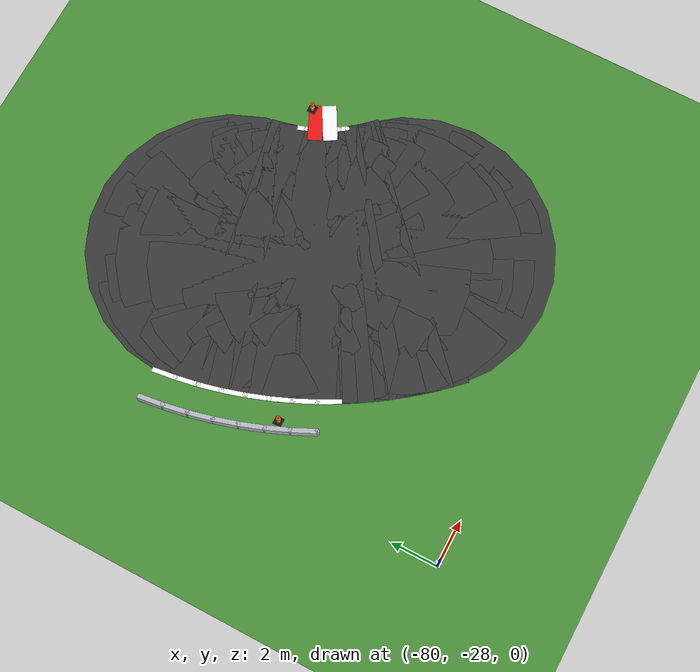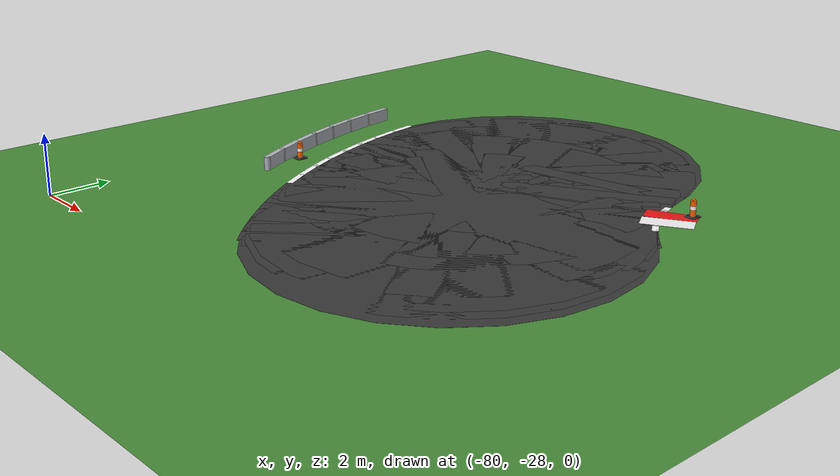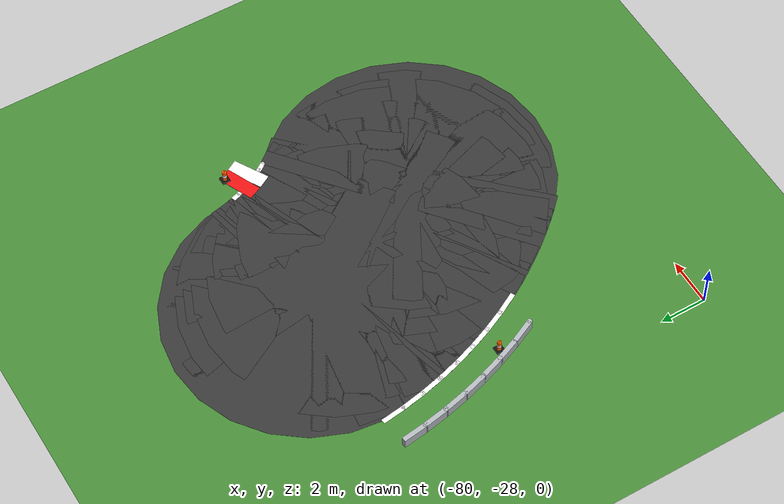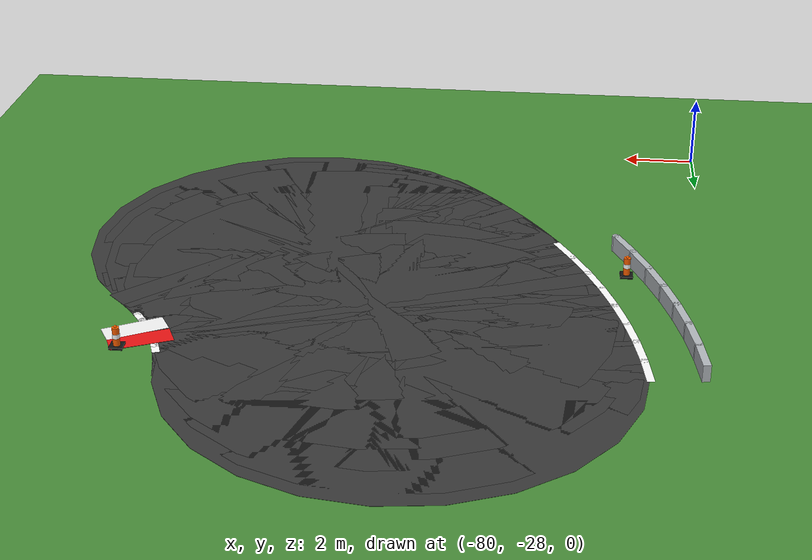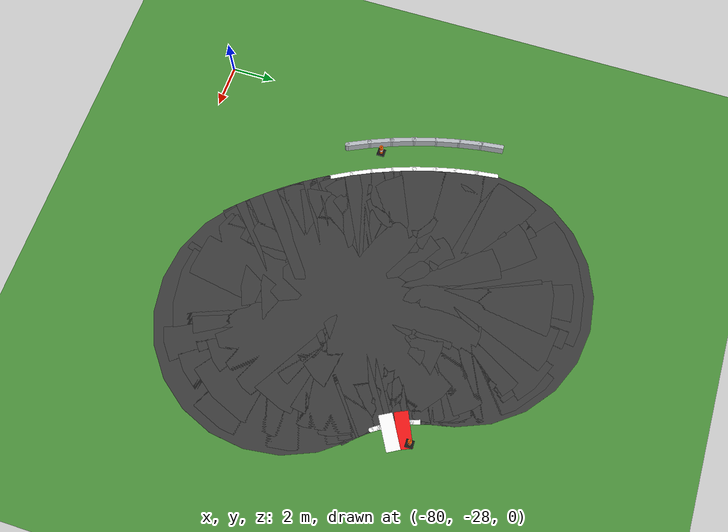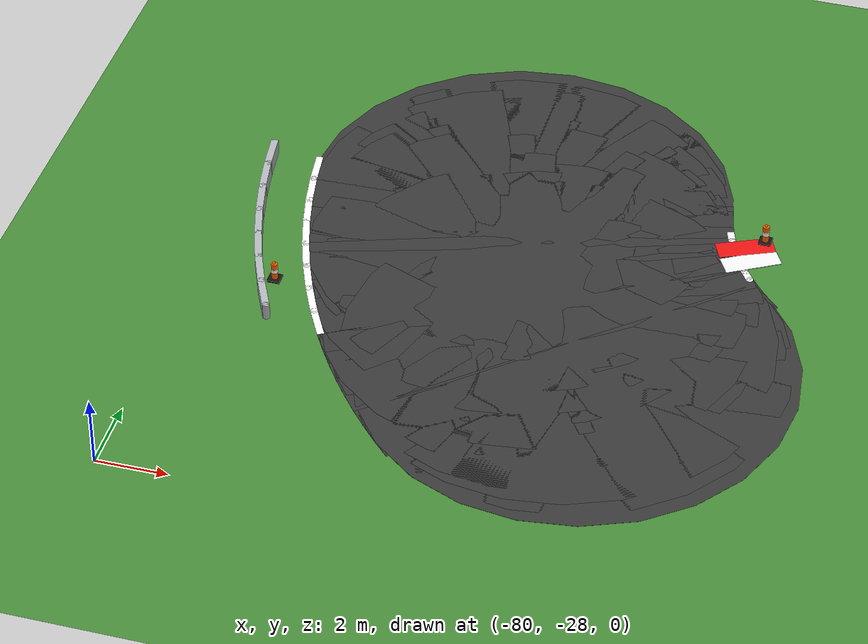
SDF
<sdf version="1.6">
 <world name="sem_silesia_ring_2026">
  <model name="ground_plane">
   <static>true</static>
   <link name="link">
    <collision name="collision">
     <geometry><plane><normal>0 0 1</normal><size>600 600</size></plane></geometry>
     <surface><friction><ode><mu>0.6</mu><mu2>0.6</mu2></ode></friction></surface>
    </collision>
    <visual name="visual">
     <geometry><plane><normal>0 0 1</normal><size>600 600</size></plane></geometry>
     <material><ambient>0.28 0.55 0.22 1</ambient><diffuse>0.28 0.55 0.22 1</diffuse></material>
    </visual>
   </link>
  </model>
  <model name="road_L_jnt50">
   <static>true</static>
   <pose>-72.3101 -14.6706 0.0030 0 0 0</pose>
   <link name="link">
    <visual name="v">
     <geometry><cylinder><radius>6.0000</radius><length>0.0060</length></cylinder></geometry>
     <material><ambient>0.22 0.22 0.22 1</ambient><diffuse>0.22 0.22 0.22 1</diffuse></material>
    </visual>
    <collision name="c">
     <geometry><cylinder><radius>6.0000</radius><length>0.0060</length></cylinder></geometry>
     <surface><friction><ode><mu>0.9</mu><mu2>0.9</mu2></ode></friction></surface>
    </collision>
   </link>
  </model>
  <model name="road_L_s50">
   <static>true</static>
   <pose>-72.2703 -14.8851 0.0030 0 0 4.9044</pose>
   <link name="link">
    <visual name="v">
     <geometry><box><size>0.6957 12.0000 0.0060</size></box></geometry>
     <material><ambient>0.22 0.22 0.22 1</ambient><diffuse>0.22 0.22 0.22 1</diffuse></material>
    </visual>
    <collision name="c">
     <geometry><box><size>0.6957 12.0000 0.0060</size></box></geometry>
     <surface><friction><ode><mu>0.9</mu><mu2>0.9</mu2></ode></friction></surface>
    </collision>
   </link>
  </model>
  <model name="road_L_jnt51">
   <static>true</static>
   <pose>-72.2268 -15.0989 0.0030 0 0 0</pose>
   <link name="link">
    <visual name="v">
     <geometry><cylinder><radius>6.0000</radius><length>0.0060</length></cylinder></geometry>
     <material><ambient>0.22 0.22 0.22 1</ambient><diffuse>0.22 0.22 0.22 1</diffuse></material>
    </visual>
    <collision name="c">
     <geometry><cylinder><radius>6.0000</radius><length>0.0060</length></cylinder></geometry>
     <surface><friction><ode><mu>0.9</mu><mu2>0.9</mu2></ode></friction></surface>
    </collision>
   </link>
  </model>
  <model name="road_L_s51">
   <static>true</static>
   <pose>-72.1796 -15.3119 0.0030 0 0 4.9393</pose>
   <link name="link">
    <visual name="v">
     <geometry><box><size>0.6957 12.0000 0.0060</size></box></geometry>
     <material><ambient>0.22 0.22 0.22 1</ambient><diffuse>0.22 0.22 0.22 1</diffuse></material>
    </visual>
    <collision name="c">
     <geometry><box><size>0.6957 12.0000 0.0060</size></box></geometry>
     <surface><friction><ode><mu>0.9</mu><mu2>0.9</mu2></ode></friction></surface>
    </collision>
   </link>
  </model>
  <model name="road_L_jnt52">
   <static>true</static>
   <pose>-72.1287 -15.5240 0.0030 0 0 0</pose>
   <link name="link">
    <visual name="v">
     <geometry><cylinder><radius>6.0000</radius><length>0.0060</length></cylinder></geometry>
     <material><ambient>0.22 0.22 0.22 1</ambient><diffuse>0.22 0.22 0.22 1</diffuse></material>
    </visual>
    <collision name="c">
     <geometry><cylinder><radius>6.0000</radius><length>0.0060</length></cylinder></geometry>
     <surface><friction><ode><mu>0.9</mu><mu2>0.9</mu2></ode></friction></surface>
    </collision>
   </link>
  </model>
  <model name="road_L_s52">
   <static>true</static>
   <pose>-72.0741 -15.7352 0.0030 0 0 4.9742</pose>
   <link name="link">
    <visual name="v">
     <geometry><box><size>0.6957 12.0000 0.0060</size></box></geometry>
     <material><ambient>0.22 0.22 0.22 1</ambient><diffuse>0.22 0.22 0.22 1</diffuse></material>
    </visual>
    <collision name="c">
     <geometry><box><size>0.6957 12.0000 0.0060</size></box></geometry>
     <surface><friction><ode><mu>0.9</mu><mu2>0.9</mu2></ode></friction></surface>
    </collision>
   </link>
  </model>
  <model name="road_L_jnt53">
   <static>true</static>
   <pose>-72.0158 -15.9455 0.0030 0 0 0</pose>
   <link name="link">
    <visual name="v">
     <geometry><cylinder><radius>6.0000</radius><length>0.0060</length></cylinder></geometry>
     <material><ambient>0.22 0.22 0.22 1</ambient><diffuse>0.22 0.22 0.22 1</diffuse></material>
    </visual>
    <collision name="c">
     <geometry><cylinder><radius>6.0000</radius><length>0.0060</length></cylinder></geometry>
     <surface><friction><ode><mu>0.9</mu><mu2>0.9</mu2></ode></friction></surface>
    </collision>
   </link>
  </model>
  <model name="road_L_s53">
   <static>true</static>
   <pose>-71.9538 -16.1546 0.0030 0 0 5.0091</pose>
   <link name="link">
    <visual name="v">
     <geometry><box><size>0.6957 12.0000 0.0060</size></box></geometry>
     <material><ambient>0.22 0.22 0.22 1</ambient><diffuse>0.22 0.22 0.22 1</diffuse></material>
    </visual>
    <collision name="c">
     <geometry><box><size>0.6957 12.0000 0.0060</size></box></geometry>
     <surface><friction><ode><mu>0.9</mu><mu2>0.9</mu2></ode></friction></surface>
    </collision>
   </link>
  </model>
  <model name="road_L_jnt54">
   <static>true</static>
   <pose>-71.8882 -16.3627 0.0030 0 0 0</pose>
   <link name="link">
    <visual name="v">
     <geometry><cylinder><radius>6.0000</radius><length>0.0060</length></cylinder></geometry>
     <material><ambient>0.22 0.22 0.22 1</ambient><diffuse>0.22 0.22 0.22 1</diffuse></material>
    </visual>
    <collision name="c">
     <geometry><cylinder><radius>6.0000</radius><length>0.0060</length></cylinder></geometry>
     <surface><friction><ode><mu>0.9</mu><mu2>0.9</mu2></ode></friction></surface>
    </collision>
   </link>
  </model>
  <model name="road_L_s54">
   <static>true</static>
   <pose>-71.8190 -16.5696 0.0030 0 0 5.0440</pose>
   <link name="link">
    <visual name="v">
     <geometry><box><size>0.6957 12.0000 0.0060</size></box></geometry>
     <material><ambient>0.22 0.22 0.22 1</ambient><diffuse>0.22 0.22 0.22 1</diffuse></material>
    </visual>
    <collision name="c">
     <geometry><box><size>0.6957 12.0000 0.0060</size></box></geometry>
     <surface><friction><ode><mu>0.9</mu><mu2>0.9</mu2></ode></friction></surface>
    </collision>
   </link>
  </model>
  <model name="road_L_jnt55">
   <static>true</static>
   <pose>-71.7462 -16.7753 0.0030 0 0 0</pose>
   <link name="link">
    <visual name="v">
     <geometry><cylinder><radius>6.0000</radius><length>0.0060</length></cylinder></geometry>
     <material><ambient>0.22 0.22 0.22 1</ambient><diffuse>0.22 0.22 0.22 1</diffuse></material>
    </visual>
    <collision name="c">
     <geometry><cylinder><radius>6.0000</radius><length>0.0060</length></cylinder></geometry>
     <surface><friction><ode><mu>0.9</mu><mu2>0.9</mu2></ode></friction></surface>
    </collision>
   </link>
  </model>
  <model name="road_L_s55">
   <static>true</static>
   <pose>-71.6698 -16.9796 0.0030 0 0 5.0789</pose>
   <link name="link">
    <visual name="v">
     <geometry><box><size>0.6957 12.0000 0.0060</size></box></geometry>
     <material><ambient>0.22 0.22 0.22 1</ambient><diffuse>0.22 0.22 0.22 1</diffuse></material>
    </visual>
    <collision name="c">
     <geometry><box><size>0.6957 12.0000 0.0060</size></box></geometry>
     <surface><friction><ode><mu>0.9</mu><mu2>0.9</mu2></ode></friction></surface>
    </collision>
   </link>
  </model>
  <model name="road_L_jnt56">
   <static>true</static>
   <pose>-71.5898 -17.1826 0.0030 0 0 0</pose>
   <link name="link">
    <visual name="v">
     <geometry><cylinder><radius>6.0000</radius><length>0.0060</length></cylinder></geometry>
     <material><ambient>0.22 0.22 0.22 1</ambient><diffuse>0.22 0.22 0.22 1</diffuse></material>
    </visual>
    <collision name="c">
     <geometry><cylinder><radius>6.0000</radius><length>0.0060</length></cylinder></geometry>
     <surface><friction><ode><mu>0.9</mu><mu2>0.9</mu2></ode></friction></surface>
    </collision>
   </link>
  </model>
  <model name="road_L_s56">
   <static>true</static>
   <pose>-71.5063 -17.3841 0.0030 0 0 5.1138</pose>
   <link name="link">
    <visual name="v">
     <geometry><box><size>0.6957 12.0000 0.0060</size></box></geometry>
     <material><ambient>0.22 0.22 0.22 1</ambient><diffuse>0.22 0.22 0.22 1</diffuse></material>
    </visual>
    <collision name="c">
     <geometry><box><size>0.6957 12.0000 0.0060</size></box></geometry>
     <surface><friction><ode><mu>0.9</mu><mu2>0.9</mu2></ode></friction></surface>
    </collision>
   </link>
  </model>
  <model name="road_L_jnt57">
   <static>true</static>
   <pose>-71.4193 -17.5842 0.0030 0 0 0</pose>
   <link name="link">
    <visual name="v">
     <geometry><cylinder><radius>6.0000</radius><length>0.0060</length></cylinder></geometry>
     <material><ambient>0.22 0.22 0.22 1</ambient><diffuse>0.22 0.22 0.22 1</diffuse></material>
    </visual>
    <collision name="c">
     <geometry><cylinder><radius>6.0000</radius><length>0.0060</length></cylinder></geometry>
     <surface><friction><ode><mu>0.9</mu><mu2>0.9</mu2></ode></friction></surface>
    </collision>
   </link>
  </model>
  <model name="road_L_s57">
   <static>true</static>
   <pose>-71.3288 -17.7827 0.0030 0 0 5.1487</pose>
   <link name="link">
    <visual name="v">
     <geometry><box><size>0.6957 12.0000 0.0060</size></box></geometry>
     <material><ambient>0.22 0.22 0.22 1</ambient><diffuse>0.22 0.22 0.22 1</diffuse></material>
    </visual>
    <collision name="c">
     <geometry><box><size>0.6957 12.0000 0.0060</size></box></geometry>
     <surface><friction><ode><mu>0.9</mu><mu2>0.9</mu2></ode></friction></surface>
    </collision>
   </link>
  </model>
  <model name="road_L_jnt58">
   <static>true</static>
   <pose>-71.2349 -17.9796 0.0030 0 0 0</pose>
   <link name="link">
    <visual name="v">
     <geometry><cylinder><radius>6.0000</radius><length>0.0060</length></cylinder></geometry>
     <material><ambient>0.22 0.22 0.22 1</ambient><diffuse>0.22 0.22 0.22 1</diffuse></material>
    </visual>
    <collision name="c">
     <geometry><cylinder><radius>6.0000</radius><length>0.0060</length></cylinder></geometry>
     <surface><friction><ode><mu>0.9</mu><mu2>0.9</mu2></ode></friction></surface>
    </collision>
   </link>
  </model>
  <model name="road_L_s58">
   <static>true</static>
   <pose>-71.1376 -18.1749 0.0030 0 0 5.1836</pose>
   <link name="link">
    <visual name="v">
     <geometry><box><size>0.6957 12.0000 0.0060</size></box></geometry>
     <material><ambient>0.22 0.22 0.22 1</ambient><diffuse>0.22 0.22 0.22 1</diffuse></material>
    </visual>
    <collision name="c">
     <geometry><box><size>0.6957 12.0000 0.0060</size></box></geometry>
     <surface><friction><ode><mu>0.9</mu><mu2>0.9</mu2></ode></friction></surface>
    </collision>
   </link>
  </model>
  <model name="road_L_jnt59">
   <static>true</static>
   <pose>-71.0368 -18.3684 0.0030 0 0 0</pose>
   <link name="link">
    <visual name="v">
     <geometry><cylinder><radius>6.0000</radius><length>0.0060</length></cylinder></geometry>
     <material><ambient>0.22 0.22 0.22 1</ambient><diffuse>0.22 0.22 0.22 1</diffuse></material>
    </visual>
    <collision name="c">
     <geometry><cylinder><radius>6.0000</radius><length>0.0060</length></cylinder></geometry>
     <surface><friction><ode><mu>0.9</mu><mu2>0.9</mu2></ode></friction></surface>
    </collision>
   </link>
  </model>
  <model name="road_L_s59">
   <static>true</static>
   <pose>-70.9327 -18.5601 0.0030 0 0 5.2185</pose>
   <link name="link">
    <visual name="v">
     <geometry><box><size>0.6957 12.0000 0.0060</size></box></geometry>
     <material><ambient>0.22 0.22 0.22 1</ambient><diffuse>0.22 0.22 0.22 1</diffuse></material>
    </visual>
    <collision name="c">
     <geometry><box><size>0.6957 12.0000 0.0060</size></box></geometry>
     <surface><friction><ode><mu>0.9</mu><mu2>0.9</mu2></ode></friction></surface>
    </collision>
   </link>
  </model>
  <model name="road_L_jnt60">
   <static>true</static>
   <pose>-70.8253 -18.7500 0.0030 0 0 0</pose>
   <link name="link">
    <visual name="v">
     <geometry><cylinder><radius>6.0000</radius><length>0.0060</length></cylinder></geometry>
     <material><ambient>0.22 0.22 0.22 1</ambient><diffuse>0.22 0.22 0.22 1</diffuse></material>
    </visual>
    <collision name="c">
     <geometry><cylinder><radius>6.0000</radius><length>0.0060</length></cylinder></geometry>
     <surface><friction><ode><mu>0.9</mu><mu2>0.9</mu2></ode></friction></surface>
    </collision>
   </link>
  </model>
  <model name="road_L_s60">
   <static>true</static>
   <pose>-70.7146 -18.9380 0.0030 0 0 5.2534</pose>
   <link name="link">
    <visual name="v">
     <geometry><box><size>0.6957 12.0000 0.0060</size></box></geometry>
     <material><ambient>0.22 0.22 0.22 1</ambient><diffuse>0.22 0.22 0.22 1</diffuse></material>
    </visual>
    <collision name="c">
     <geometry><box><size>0.6957 12.0000 0.0060</size></box></geometry>
     <surface><friction><ode><mu>0.9</mu><mu2>0.9</mu2></ode></friction></surface>
    </collision>
   </link>
  </model>
  <model name="road_L_jnt61">
   <static>true</static>
   <pose>-70.6006 -19.1240 0.0030 0 0 0</pose>
   <link name="link">
    <visual name="v">
     <geometry><cylinder><radius>6.0000</radius><length>0.0060</length></cylinder></geometry>
     <material><ambient>0.22 0.22 0.22 1</ambient><diffuse>0.22 0.22 0.22 1</diffuse></material>
    </visual>
    <collision name="c">
     <geometry><cylinder><radius>6.0000</radius><length>0.0060</length></cylinder></geometry>
     <surface><friction><ode><mu>0.9</mu><mu2>0.9</mu2></ode></friction></surface>
    </collision>
   </link>
  </model>
  <model name="road_L_s61">
   <static>true</static>
   <pose>-70.4834 -19.3080 0.0030 0 0 5.2883</pose>
   <link name="link">
    <visual name="v">
     <geometry><box><size>0.6957 12.0000 0.0060</size></box></geometry>
     <material><ambient>0.22 0.22 0.22 1</ambient><diffuse>0.22 0.22 0.22 1</diffuse></material>
    </visual>
    <collision name="c">
     <geometry><box><size>0.6957 12.0000 0.0060</size></box></geometry>
     <surface><friction><ode><mu>0.9</mu><mu2>0.9</mu2></ode></friction></surface>
    </collision>
   </link>
  </model>
  <model name="road_L_jnt62">
   <static>true</static>
   <pose>-70.3630 -19.4899 0.0030 0 0 0</pose>
   <link name="link">
    <visual name="v">
     <geometry><cylinder><radius>6.0000</radius><length>0.0060</length></cylinder></geometry>
     <material><ambient>0.22 0.22 0.22 1</ambient><diffuse>0.22 0.22 0.22 1</diffuse></material>
    </visual>
    <collision name="c">
     <geometry><cylinder><radius>6.0000</radius><length>0.0060</length></cylinder></geometry>
     <surface><friction><ode><mu>0.9</mu><mu2>0.9</mu2></ode></friction></surface>
    </collision>
   </link>
  </model>
  <model name="road_L_s62">
   <static>true</static>
   <pose>-70.2394 -19.6697 0.0030 0 0 5.3233</pose>
   <link name="link">
    <visual name="v">
     <geometry><box><size>0.6957 12.0000 0.0060</size></box></geometry>
     <material><ambient>0.22 0.22 0.22 1</ambient><diffuse>0.22 0.22 0.22 1</diffuse></material>
    </visual>
    <collision name="c">
     <geometry><box><size>0.6957 12.0000 0.0060</size></box></geometry>
     <surface><friction><ode><mu>0.9</mu><mu2>0.9</mu2></ode></friction></surface>
    </collision>
   </link>
  </model>
  <model name="road_L_jnt63">
   <static>true</static>
   <pose>-70.1127 -19.8473 0.0030 0 0 0</pose>
   <link name="link">
    <visual name="v">
     <geometry><cylinder><radius>6.0000</radius><length>0.0060</length></cylinder></geometry>
     <material><ambient>0.22 0.22 0.22 1</ambient><diffuse>0.22 0.22 0.22 1</diffuse></material>
    </visual>
    <collision name="c">
     <geometry><cylinder><radius>6.0000</radius><length>0.0060</length></cylinder></geometry>
     <surface><friction><ode><mu>0.9</mu><mu2>0.9</mu2></ode></friction></surface>
    </collision>
   </link>
  </model>
  <model name="road_L_s63">
   <static>true</static>
   <pose>-69.9829 -20.0227 0.0030 0 0 5.3582</pose>
   <link name="link">
    <visual name="v">
     <geometry><box><size>0.6957 12.0000 0.0060</size></box></geometry>
     <material><ambient>0.22 0.22 0.22 1</ambient><diffuse>0.22 0.22 0.22 1</diffuse></material>
    </visual>
    <collision name="c">
     <geometry><box><size>0.6957 12.0000 0.0060</size></box></geometry>
     <surface><friction><ode><mu>0.9</mu><mu2>0.9</mu2></ode></friction></surface>
    </collision>
   </link>
  </model>
  <model name="road_L_jnt64">
   <static>true</static>
   <pose>-69.8501 -20.1958 0.0030 0 0 0</pose>
   <link name="link">
    <visual name="v">
     <geometry><cylinder><radius>6.0000</radius><length>0.0060</length></cylinder></geometry>
     <material><ambient>0.22 0.22 0.22 1</ambient><diffuse>0.22 0.22 0.22 1</diffuse></material>
    </visual>
    <collision name="c">
     <geometry><cylinder><radius>6.0000</radius><length>0.0060</length></cylinder></geometry>
     <surface><friction><ode><mu>0.9</mu><mu2>0.9</mu2></ode></friction></surface>
    </collision>
   </link>
  </model>
  <model name="road_L_s64">
   <static>true</static>
   <pose>-69.7143 -20.3665 0.0030 0 0 5.3931</pose>
   <link name="link">
    <visual name="v">
     <geometry><box><size>0.6957 12.0000 0.0060</size></box></geometry>
     <material><ambient>0.22 0.22 0.22 1</ambient><diffuse>0.22 0.22 0.22 1</diffuse></material>
    </visual>
    <collision name="c">
     <geometry><box><size>0.6957 12.0000 0.0060</size></box></geometry>
     <surface><friction><ode><mu>0.9</mu><mu2>0.9</mu2></ode></friction></surface>
    </collision>
   </link>
  </model>
  <model name="road_L_jnt65">
   <static>true</static>
   <pose>-69.5756 -20.5348 0.0030 0 0 0</pose>
   <link name="link">
    <visual name="v">
     <geometry><cylinder><radius>6.0000</radius><length>0.0060</length></cylinder></geometry>
     <material><ambient>0.22 0.22 0.22 1</ambient><diffuse>0.22 0.22 0.22 1</diffuse></material>
    </visual>
    <collision name="c">
     <geometry><cylinder><radius>6.0000</radius><length>0.0060</length></cylinder></geometry>
     <surface><friction><ode><mu>0.9</mu><mu2>0.9</mu2></ode></friction></surface>
    </collision>
   </link>
  </model>
  <model name="road_L_s65">
   <static>true</static>
   <pose>-69.4339 -20.7007 0.0030 0 0 5.4280</pose>
   <link name="link">
    <visual name="v">
     <geometry><box><size>0.6957 12.0000 0.0060</size></box></geometry>
     <material><ambient>0.22 0.22 0.22 1</ambient><diffuse>0.22 0.22 0.22 1</diffuse></material>
    </visual>
    <collision name="c">
     <geometry><box><size>0.6957 12.0000 0.0060</size></box></geometry>
     <surface><friction><ode><mu>0.9</mu><mu2>0.9</mu2></ode></friction></surface>
    </collision>
   </link>
  </model>
  <model name="road_L_jnt66">
   <static>true</static>
   <pose>-69.2893 -20.8641 0.0030 0 0 0</pose>
   <link name="link">
    <visual name="v">
     <geometry><cylinder><radius>6.0000</radius><length>0.0060</length></cylinder></geometry>
     <material><ambient>0.22 0.22 0.22 1</ambient><diffuse>0.22 0.22 0.22 1</diffuse></material>
    </visual>
    <collision name="c">
     <geometry><cylinder><radius>6.0000</radius><length>0.0060</length></cylinder></geometry>
     <surface><friction><ode><mu>0.9</mu><mu2>0.9</mu2></ode></friction></surface>
    </collision>
   </link>
  </model>
  <model name="road_L_s66">
   <static>true</static>
   <pose>-69.1419 -21.0250 0.0030 0 0 5.4629</pose>
   <link name="link">
    <visual name="v">
     <geometry><box><size>0.6957 12.0000 0.0060</size></box></geometry>
     <material><ambient>0.22 0.22 0.22 1</ambient><diffuse>0.22 0.22 0.22 1</diffuse></material>
    </visual>
    <collision name="c">
     <geometry><box><size>0.6957 12.0000 0.0060</size></box></geometry>
     <surface><friction><ode><mu>0.9</mu><mu2>0.9</mu2></ode></friction></surface>
    </collision>
   </link>
  </model>
  <model name="road_L_jnt67">
   <static>true</static>
   <pose>-68.9917 -21.1832 0.0030 0 0 0</pose>
   <link name="link">
    <visual name="v">
     <geometry><cylinder><radius>6.0000</radius><length>0.0060</length></cylinder></geometry>
     <material><ambient>0.22 0.22 0.22 1</ambient><diffuse>0.22 0.22 0.22 1</diffuse></material>
    </visual>
    <collision name="c">
     <geometry><cylinder><radius>6.0000</radius><length>0.0060</length></cylinder></geometry>
     <surface><friction><ode><mu>0.9</mu><mu2>0.9</mu2></ode></friction></surface>
    </collision>
   </link>
  </model>
  <model name="road_L_s67">
   <static>true</static>
   <pose>-68.8388 -21.3388 0.0030 0 0 5.4978</pose>
   <link name="link">
    <visual name="v">
     <geometry><box><size>0.6957 12.0000 0.0060</size></box></geometry>
     <material><ambient>0.22 0.22 0.22 1</ambient><diffuse>0.22 0.22 0.22 1</diffuse></material>
    </visual>
    <collision name="c">
     <geometry><box><size>0.6957 12.0000 0.0060</size></box></geometry>
     <surface><friction><ode><mu>0.9</mu><mu2>0.9</mu2></ode></friction></surface>
    </collision>
   </link>
  </model>
  <model name="wl_Lo_s32">
   <static>true</static>
   <pose>-78.2426 -14.9017 0.0050 0 0 4.8433</pose>
   <link name="link">
    <visual name="v">
     <geometry><box><size>1.0185 0.2000 0.0040</size></box></geometry>
     <material><ambient>1 1 1 1</ambient><diffuse>1 1 1 1</diffuse></material>
    </visual>
    <collision name="c">
     <geometry><box><size>1.0185 0.2000 0.0040</size></box></geometry>
     <surface><friction><ode><mu>0.9</mu><mu2>0.9</mu2></ode></friction></surface>
    </collision>
   </link>
  </model>
  <model name="wl_Lo_jnt33">
   <static>true</static>
   <pose>-78.1735 -15.3784 0.0050 0 0 0</pose>
   <link name="link">
    <visual name="v">
     <geometry><cylinder><radius>0.1000</radius><length>0.0040</length></cylinder></geometry>
     <material><ambient>1 1 1 1</ambient><diffuse>1 1 1 1</diffuse></material>
    </visual>
    <collision name="c">
     <geometry><cylinder><radius>0.1000</radius><length>0.0040</length></cylinder></geometry>
     <surface><friction><ode><mu>0.9</mu><mu2>0.9</mu2></ode></friction></surface>
    </collision>
   </link>
  </model>
  <model name="wl_Lo_s33">
   <static>true</static>
   <pose>-78.0919 -15.8531 0.0050 0 0 4.8956</pose>
   <link name="link">
    <visual name="v">
     <geometry><box><size>1.0185 0.2000 0.0040</size></box></geometry>
     <material><ambient>1 1 1 1</ambient><diffuse>1 1 1 1</diffuse></material>
    </visual>
    <collision name="c">
     <geometry><box><size>1.0185 0.2000 0.0040</size></box></geometry>
     <surface><friction><ode><mu>0.9</mu><mu2>0.9</mu2></ode></friction></surface>
    </collision>
   </link>
  </model>
  <model name="wl_Lo_jnt34">
   <static>true</static>
   <pose>-77.9979 -16.3256 0.0050 0 0 0</pose>
   <link name="link">
    <visual name="v">
     <geometry><cylinder><radius>0.1000</radius><length>0.0040</length></cylinder></geometry>
     <material><ambient>1 1 1 1</ambient><diffuse>1 1 1 1</diffuse></material>
    </visual>
    <collision name="c">
     <geometry><cylinder><radius>0.1000</radius><length>0.0040</length></cylinder></geometry>
     <surface><friction><ode><mu>0.9</mu><mu2>0.9</mu2></ode></friction></surface>
    </collision>
   </link>
  </model>
  <model name="wl_Lo_s34">
   <static>true</static>
   <pose>-77.8916 -16.7954 0.0050 0 0 4.9480</pose>
   <link name="link">
    <visual name="v">
     <geometry><box><size>1.0185 0.2000 0.0040</size></box></geometry>
     <material><ambient>1 1 1 1</ambient><diffuse>1 1 1 1</diffuse></material>
    </visual>
    <collision name="c">
     <geometry><box><size>1.0185 0.2000 0.0040</size></box></geometry>
     <surface><friction><ode><mu>0.9</mu><mu2>0.9</mu2></ode></friction></surface>
    </collision>
   </link>
  </model>
  <model name="wl_Lo_jnt35">
   <static>true</static>
   <pose>-77.7730 -17.2623 0.0050 0 0 0</pose>
   <link name="link">
    <visual name="v">
     <geometry><cylinder><radius>0.1000</radius><length>0.0040</length></cylinder></geometry>
     <material><ambient>1 1 1 1</ambient><diffuse>1 1 1 1</diffuse></material>
    </visual>
    <collision name="c">
     <geometry><cylinder><radius>0.1000</radius><length>0.0040</length></cylinder></geometry>
     <surface><friction><ode><mu>0.9</mu><mu2>0.9</mu2></ode></friction></surface>
    </collision>
   </link>
  </model>
  <model name="wl_Lo_s35">
   <static>true</static>
   <pose>-77.6423 -17.7259 0.0050 0 0 5.0004</pose>
   <link name="link">
    <visual name="v">
     <geometry><box><size>1.0185 0.2000 0.0040</size></box></geometry>
     <material><ambient>1 1 1 1</ambient><diffuse>1 1 1 1</diffuse></material>
    </visual>
    <collision name="c">
     <geometry><box><size>1.0185 0.2000 0.0040</size></box></geometry>
     <surface><friction><ode><mu>0.9</mu><mu2>0.9</mu2></ode></friction></surface>
    </collision>
   </link>
  </model>
  <model name="wl_Lo_jnt36">
   <static>true</static>
   <pose>-77.4994 -18.1859 0.0050 0 0 0</pose>
   <link name="link">
    <visual name="v">
     <geometry><cylinder><radius>0.1000</radius><length>0.0040</length></cylinder></geometry>
     <material><ambient>1 1 1 1</ambient><diffuse>1 1 1 1</diffuse></material>
    </visual>
    <collision name="c">
     <geometry><cylinder><radius>0.1000</radius><length>0.0040</length></cylinder></geometry>
     <surface><friction><ode><mu>0.9</mu><mu2>0.9</mu2></ode></friction></surface>
    </collision>
   </link>
  </model>
  <model name="wl_Lo_s36">
   <static>true</static>
   <pose>-77.3446 -18.6420 0.0050 0 0 5.0527</pose>
   <link name="link">
    <visual name="v">
     <geometry><box><size>1.0185 0.2000 0.0040</size></box></geometry>
     <material><ambient>1 1 1 1</ambient><diffuse>1 1 1 1</diffuse></material>
    </visual>
    <collision name="c">
     <geometry><box><size>1.0185 0.2000 0.0040</size></box></geometry>
     <surface><friction><ode><mu>0.9</mu><mu2>0.9</mu2></ode></friction></surface>
    </collision>
   </link>
  </model>
  <model name="wl_Lo_jnt37">
   <static>true</static>
   <pose>-77.1779 -19.0940 0.0050 0 0 0</pose>
   <link name="link">
    <visual name="v">
     <geometry><cylinder><radius>0.1000</radius><length>0.0040</length></cylinder></geometry>
     <material><ambient>1 1 1 1</ambient><diffuse>1 1 1 1</diffuse></material>
    </visual>
    <collision name="c">
     <geometry><cylinder><radius>0.1000</radius><length>0.0040</length></cylinder></geometry>
     <surface><friction><ode><mu>0.9</mu><mu2>0.9</mu2></ode></friction></surface>
    </collision>
   </link>
  </model>
  <model name="wl_Lo_s37">
   <static>true</static>
   <pose>-76.9994 -19.5414 0.0050 0 0 5.1051</pose>
   <link name="link">
    <visual name="v">
     <geometry><box><size>1.0185 0.2000 0.0040</size></box></geometry>
     <material><ambient>1 1 1 1</ambient><diffuse>1 1 1 1</diffuse></material>
    </visual>
    <collision name="c">
     <geometry><box><size>1.0185 0.2000 0.0040</size></box></geometry>
     <surface><friction><ode><mu>0.9</mu><mu2>0.9</mu2></ode></friction></surface>
    </collision>
   </link>
  </model>
  <model name="wl_Lo_jnt38">
   <static>true</static>
   <pose>-76.8092 -19.9840 0.0050 0 0 0</pose>
   <link name="link">
    <visual name="v">
     <geometry><cylinder><radius>0.1000</radius><length>0.0040</length></cylinder></geometry>
     <material><ambient>1 1 1 1</ambient><diffuse>1 1 1 1</diffuse></material>
    </visual>
    <collision name="c">
     <geometry><cylinder><radius>0.1000</radius><length>0.0040</length></cylinder></geometry>
     <surface><friction><ode><mu>0.9</mu><mu2>0.9</mu2></ode></friction></surface>
    </collision>
   </link>
  </model>
  <model name="wl_Lo_s38">
   <static>true</static>
   <pose>-76.6076 -20.4214 0.0050 0 0 5.1574</pose>
   <link name="link">
    <visual name="v">
     <geometry><box><size>1.0185 0.2000 0.0040</size></box></geometry>
     <material><ambient>1 1 1 1</ambient><diffuse>1 1 1 1</diffuse></material>
    </visual>
    <collision name="c">
     <geometry><box><size>1.0185 0.2000 0.0040</size></box></geometry>
     <surface><friction><ode><mu>0.9</mu><mu2>0.9</mu2></ode></friction></surface>
    </collision>
   </link>
  </model>
  <model name="wl_Lo_jnt39">
   <static>true</static>
   <pose>-76.3945 -20.8534 0.0050 0 0 0</pose>
   <link name="link">
    <visual name="v">
     <geometry><cylinder><radius>0.1000</radius><length>0.0040</length></cylinder></geometry>
     <material><ambient>1 1 1 1</ambient><diffuse>1 1 1 1</diffuse></material>
    </visual>
    <collision name="c">
     <geometry><cylinder><radius>0.1000</radius><length>0.0040</length></cylinder></geometry>
     <surface><friction><ode><mu>0.9</mu><mu2>0.9</mu2></ode></friction></surface>
    </collision>
   </link>
  </model>
  <model name="wl_Lo_s39">
   <static>true</static>
   <pose>-76.1702 -21.2797 0.0050 0 0 5.2098</pose>
   <link name="link">
    <visual name="v">
     <geometry><box><size>1.0185 0.2000 0.0040</size></box></geometry>
     <material><ambient>1 1 1 1</ambient><diffuse>1 1 1 1</diffuse></material>
    </visual>
    <collision name="c">
     <geometry><box><size>1.0185 0.2000 0.0040</size></box></geometry>
     <surface><friction><ode><mu>0.9</mu><mu2>0.9</mu2></ode></friction></surface>
    </collision>
   </link>
  </model>
  <model name="wl_Li_s36">
   <static>true</static>
   <pose>-66.2214 -14.7031 0.0050 0 0 5.0527</pose>
   <link name="link">
    <visual name="v">
     <geometry><box><size>0.4008 0.2000 0.0040</size></box></geometry>
     <material><ambient>1 1 1 1</ambient><diffuse>1 1 1 1</diffuse></material>
    </visual>
    <collision name="c">
     <geometry><box><size>0.4008 0.2000 0.0040</size></box></geometry>
     <surface><friction><ode><mu>0.9</mu><mu2>0.9</mu2></ode></friction></surface>
    </collision>
   </link>
  </model>
  <model name="wl_Li_jnt37">
   <static>true</static>
   <pose>-66.1616 -14.8652 0.0050 0 0 0</pose>
   <link name="link">
    <visual name="v">
     <geometry><cylinder><radius>0.1000</radius><length>0.0040</length></cylinder></geometry>
     <material><ambient>1 1 1 1</ambient><diffuse>1 1 1 1</diffuse></material>
    </visual>
    <collision name="c">
     <geometry><cylinder><radius>0.1000</radius><length>0.0040</length></cylinder></geometry>
     <surface><friction><ode><mu>0.9</mu><mu2>0.9</mu2></ode></friction></surface>
    </collision>
   </link>
  </model>
  <model name="wl_Li_s37">
   <static>true</static>
   <pose>-66.0976 -15.0257 0.0050 0 0 5.1051</pose>
   <link name="link">
    <visual name="v">
     <geometry><box><size>0.4008 0.2000 0.0040</size></box></geometry>
     <material><ambient>1 1 1 1</ambient><diffuse>1 1 1 1</diffuse></material>
    </visual>
    <collision name="c">
     <geometry><box><size>0.4008 0.2000 0.0040</size></box></geometry>
     <surface><friction><ode><mu>0.9</mu><mu2>0.9</mu2></ode></friction></surface>
    </collision>
   </link>
  </model>
  <model name="wl_Li_jnt38">
   <static>true</static>
   <pose>-66.0294 -15.1845 0.0050 0 0 0</pose>
   <link name="link">
    <visual name="v">
     <geometry><cylinder><radius>0.1000</radius><length>0.0040</length></cylinder></geometry>
     <material><ambient>1 1 1 1</ambient><diffuse>1 1 1 1</diffuse></material>
    </visual>
    <collision name="c">
     <geometry><cylinder><radius>0.1000</radius><length>0.0040</length></cylinder></geometry>
     <surface><friction><ode><mu>0.9</mu><mu2>0.9</mu2></ode></friction></surface>
    </collision>
   </link>
  </model>
  <model name="wl_Li_s38">
   <static>true</static>
   <pose>-65.9571 -15.3414 0.0050 0 0 5.1574</pose>
   <link name="link">
    <visual name="v">
     <geometry><box><size>0.4008 0.2000 0.0040</size></box></geometry>
     <material><ambient>1 1 1 1</ambient><diffuse>1 1 1 1</diffuse></material>
    </visual>
    <collision name="c">
     <geometry><box><size>0.4008 0.2000 0.0040</size></box></geometry>
     <surface><friction><ode><mu>0.9</mu><mu2>0.9</mu2></ode></friction></surface>
    </collision>
   </link>
  </model>
  <model name="wl_Li_jnt39">
   <static>true</static>
   <pose>-65.8806 -15.4963 0.0050 0 0 0</pose>
   <link name="link">
    <visual name="v">
     <geometry><cylinder><radius>0.1000</radius><length>0.0040</length></cylinder></geometry>
     <material><ambient>1 1 1 1</ambient><diffuse>1 1 1 1</diffuse></material>
    </visual>
    <collision name="c">
     <geometry><cylinder><radius>0.1000</radius><length>0.0040</length></cylinder></geometry>
     <surface><friction><ode><mu>0.9</mu><mu2>0.9</mu2></ode></friction></surface>
    </collision>
   </link>
  </model>
  <model name="wl_Li_s39">
   <static>true</static>
   <pose>-65.8002 -15.6492 0.0050 0 0 5.2098</pose>
   <link name="link">
    <visual name="v">
     <geometry><box><size>0.4008 0.2000 0.0040</size></box></geometry>
     <material><ambient>1 1 1 1</ambient><diffuse>1 1 1 1</diffuse></material>
    </visual>
    <collision name="c">
     <geometry><box><size>0.4008 0.2000 0.0040</size></box></geometry>
     <surface><friction><ode><mu>0.9</mu><mu2>0.9</mu2></ode></friction></surface>
    </collision>
   </link>
  </model>
  <model name="wl_Li_jnt40">
   <static>true</static>
   <pose>-65.7158 -15.8000 0.0050 0 0 0</pose>
   <link name="link">
    <visual name="v">
     <geometry><cylinder><radius>0.1000</radius><length>0.0040</length></cylinder></geometry>
     <material><ambient>1 1 1 1</ambient><diffuse>1 1 1 1</diffuse></material>
    </visual>
    <collision name="c">
     <geometry><cylinder><radius>0.1000</radius><length>0.0040</length></cylinder></geometry>
     <surface><friction><ode><mu>0.9</mu><mu2>0.9</mu2></ode></friction></surface>
    </collision>
   </link>
  </model>
  <model name="wl_Li_s40">
   <static>true</static>
   <pose>-65.6274 -15.9485 0.0050 0 0 5.2622</pose>
   <link name="link">
    <visual name="v">
     <geometry><box><size>0.4008 0.2000 0.0040</size></box></geometry>
     <material><ambient>1 1 1 1</ambient><diffuse>1 1 1 1</diffuse></material>
    </visual>
    <collision name="c">
     <geometry><box><size>0.4008 0.2000 0.0040</size></box></geometry>
     <surface><friction><ode><mu>0.9</mu><mu2>0.9</mu2></ode></friction></surface>
    </collision>
   </link>
  </model>
  <model name="wl_Li_jnt41">
   <static>true</static>
   <pose>-65.5352 -16.0946 0.0050 0 0 0</pose>
   <link name="link">
    <visual name="v">
     <geometry><cylinder><radius>0.1000</radius><length>0.0040</length></cylinder></geometry>
     <material><ambient>1 1 1 1</ambient><diffuse>1 1 1 1</diffuse></material>
    </visual>
    <collision name="c">
     <geometry><cylinder><radius>0.1000</radius><length>0.0040</length></cylinder></geometry>
     <surface><friction><ode><mu>0.9</mu><mu2>0.9</mu2></ode></friction></surface>
    </collision>
   </link>
  </model>
  <model name="wl_Li_s41">
   <static>true</static>
   <pose>-65.4392 -16.2383 0.0050 0 0 5.3145</pose>
   <link name="link">
    <visual name="v">
     <geometry><box><size>0.4008 0.2000 0.0040</size></box></geometry>
     <material><ambient>1 1 1 1</ambient><diffuse>1 1 1 1</diffuse></material>
    </visual>
    <collision name="c">
     <geometry><box><size>0.4008 0.2000 0.0040</size></box></geometry>
     <surface><friction><ode><mu>0.9</mu><mu2>0.9</mu2></ode></friction></surface>
    </collision>
   </link>
  </model>
  <model name="wl_Li_jnt42">
   <static>true</static>
   <pose>-65.3395 -16.3794 0.0050 0 0 0</pose>
   <link name="link">
    <visual name="v">
     <geometry><cylinder><radius>0.1000</radius><length>0.0040</length></cylinder></geometry>
     <material><ambient>1 1 1 1</ambient><diffuse>1 1 1 1</diffuse></material>
    </visual>
    <collision name="c">
     <geometry><cylinder><radius>0.1000</radius><length>0.0040</length></cylinder></geometry>
     <surface><friction><ode><mu>0.9</mu><mu2>0.9</mu2></ode></friction></surface>
    </collision>
   </link>
  </model>
  <model name="kL_in_k14">
   <static>true</static>
   <pose>-65.7418 -15.0925 0.0120 0 0 5.1365</pose>
   <link name="link">
    <visual name="v">
     <geometry><box><size>0.6135 1.6000 0.0120</size></box></geometry>
     <material><ambient>0.92 0.08 0.08 1</ambient><diffuse>0.92 0.08 0.08 1</diffuse></material>
    </visual>
    <collision name="c">
     <geometry><box><size>0.6135 1.6000 0.0120</size></box></geometry>
     <surface><friction><ode><mu>0.9</mu><mu2>0.9</mu2></ode></friction></surface>
    </collision>
   </link>
  </model>
  <model name="kL_in_k15">
   <static>true</static>
   <pose>-65.4724 -15.6214 0.0120 0 0 5.2308</pose>
   <link name="link">
    <visual name="v">
     <geometry><box><size>0.6135 1.6000 0.0120</size></box></geometry>
     <material><ambient>0.96 0.96 0.96 1</ambient><diffuse>0.96 0.96 0.96 1</diffuse></material>
    </visual>
    <collision name="c">
     <geometry><box><size>0.6135 1.6000 0.0120</size></box></geometry>
     <surface><friction><ode><mu>0.9</mu><mu2>0.9</mu2></ode></friction></surface>
    </collision>
   </link>
  </model>
  <model name="arm_Lo_s32">
   <static>true</static>
   <pose>-79.5315 -15.0714 0.2250 0 0 4.8433</pose>
   <link name="link">
    <visual name="v">
     <geometry><box><size>1.0866 0.2000 0.4500</size></box></geometry>
     <material><ambient>0.70 0.72 0.74 1</ambient><diffuse>0.70 0.72 0.74 1</diffuse></material>
    </visual>
    <collision name="c">
     <geometry><box><size>1.0866 0.2000 0.4500</size></box></geometry>
     <surface><friction><ode><mu>0.9</mu><mu2>0.9</mu2></ode></friction></surface>
    </collision>
   </link>
  </model>
  <model name="arm_Lo_jnt33">
   <static>true</static>
   <pose>-79.4575 -15.5818 0.2250 0 0 0</pose>
   <link name="link">
    <visual name="v">
     <geometry><cylinder><radius>0.1000</radius><length>0.4500</length></cylinder></geometry>
     <material><ambient>0.70 0.72 0.74 1</ambient><diffuse>0.70 0.72 0.74 1</diffuse></material>
    </visual>
    <collision name="c">
     <geometry><cylinder><radius>0.1000</radius><length>0.4500</length></cylinder></geometry>
     <surface><friction><ode><mu>0.9</mu><mu2>0.9</mu2></ode></friction></surface>
    </collision>
   </link>
  </model>
  <model name="arm_Lo_s33">
   <static>true</static>
   <pose>-79.3701 -16.0900 0.2250 0 0 4.8956</pose>
   <link name="link">
    <visual name="v">
     <geometry><box><size>1.0866 0.2000 0.4500</size></box></geometry>
     <material><ambient>0.70 0.72 0.74 1</ambient><diffuse>0.70 0.72 0.74 1</diffuse></material>
    </visual>
    <collision name="c">
     <geometry><box><size>1.0866 0.2000 0.4500</size></box></geometry>
     <surface><friction><ode><mu>0.9</mu><mu2>0.9</mu2></ode></friction></surface>
    </collision>
   </link>
  </model>
  <model name="arm_Lo_jnt34">
   <static>true</static>
   <pose>-79.2695 -16.5959 0.2250 0 0 0</pose>
   <link name="link">
    <visual name="v">
     <geometry><cylinder><radius>0.1000</radius><length>0.4500</length></cylinder></geometry>
     <material><ambient>0.70 0.72 0.74 1</ambient><diffuse>0.70 0.72 0.74 1</diffuse></material>
    </visual>
    <collision name="c">
     <geometry><cylinder><radius>0.1000</radius><length>0.4500</length></cylinder></geometry>
     <surface><friction><ode><mu>0.9</mu><mu2>0.9</mu2></ode></friction></surface>
    </collision>
   </link>
  </model>
  <model name="arm_Lo_s34">
   <static>true</static>
   <pose>-79.1557 -17.0989 0.2250 0 0 4.9480</pose>
   <link name="link">
    <visual name="v">
     <geometry><box><size>1.0866 0.2000 0.4500</size></box></geometry>
     <material><ambient>0.70 0.72 0.74 1</ambient><diffuse>0.70 0.72 0.74 1</diffuse></material>
    </visual>
    <collision name="c">
     <geometry><box><size>1.0866 0.2000 0.4500</size></box></geometry>
     <surface><friction><ode><mu>0.9</mu><mu2>0.9</mu2></ode></friction></surface>
    </collision>
   </link>
  </model>
  <model name="arm_Lo_jnt35">
   <static>true</static>
   <pose>-79.0287 -17.5987 0.2250 0 0 0</pose>
   <link name="link">
    <visual name="v">
     <geometry><cylinder><radius>0.1000</radius><length>0.4500</length></cylinder></geometry>
     <material><ambient>0.70 0.72 0.74 1</ambient><diffuse>0.70 0.72 0.74 1</diffuse></material>
    </visual>
    <collision name="c">
     <geometry><cylinder><radius>0.1000</radius><length>0.4500</length></cylinder></geometry>
     <surface><friction><ode><mu>0.9</mu><mu2>0.9</mu2></ode></friction></surface>
    </collision>
   </link>
  </model>
  <model name="arm_Lo_s35">
   <static>true</static>
   <pose>-78.8887 -18.0951 0.2250 0 0 5.0004</pose>
   <link name="link">
    <visual name="v">
     <geometry><box><size>1.0866 0.2000 0.4500</size></box></geometry>
     <material><ambient>0.70 0.72 0.74 1</ambient><diffuse>0.70 0.72 0.74 1</diffuse></material>
    </visual>
    <collision name="c">
     <geometry><box><size>1.0866 0.2000 0.4500</size></box></geometry>
     <surface><friction><ode><mu>0.9</mu><mu2>0.9</mu2></ode></friction></surface>
    </collision>
   </link>
  </model>
  <model name="arm_Lo_jnt36">
   <static>true</static>
   <pose>-78.7358 -18.5876 0.2250 0 0 0</pose>
   <link name="link">
    <visual name="v">
     <geometry><cylinder><radius>0.1000</radius><length>0.4500</length></cylinder></geometry>
     <material><ambient>0.70 0.72 0.74 1</ambient><diffuse>0.70 0.72 0.74 1</diffuse></material>
    </visual>
    <collision name="c">
     <geometry><cylinder><radius>0.1000</radius><length>0.4500</length></cylinder></geometry>
     <surface><friction><ode><mu>0.9</mu><mu2>0.9</mu2></ode></friction></surface>
    </collision>
   </link>
  </model>
  <model name="arm_Lo_s36">
   <static>true</static>
   <pose>-78.5700 -19.0760 0.2250 0 0 5.0527</pose>
   <link name="link">
    <visual name="v">
     <geometry><box><size>1.0866 0.2000 0.4500</size></box></geometry>
     <material><ambient>0.70 0.72 0.74 1</ambient><diffuse>0.70 0.72 0.74 1</diffuse></material>
    </visual>
    <collision name="c">
     <geometry><box><size>1.0866 0.2000 0.4500</size></box></geometry>
     <surface><friction><ode><mu>0.9</mu><mu2>0.9</mu2></ode></friction></surface>
    </collision>
   </link>
  </model>
  <model name="arm_Lo_jnt37">
   <static>true</static>
   <pose>-78.3915 -19.5598 0.2250 0 0 0</pose>
   <link name="link">
    <visual name="v">
     <geometry><cylinder><radius>0.1000</radius><length>0.4500</length></cylinder></geometry>
     <material><ambient>0.70 0.72 0.74 1</ambient><diffuse>0.70 0.72 0.74 1</diffuse></material>
    </visual>
    <collision name="c">
     <geometry><cylinder><radius>0.1000</radius><length>0.4500</length></cylinder></geometry>
     <surface><friction><ode><mu>0.9</mu><mu2>0.9</mu2></ode></friction></surface>
    </collision>
   </link>
  </model>
  <model name="arm_Lo_s37">
   <static>true</static>
   <pose>-78.2004 -20.0389 0.2250 0 0 5.1051</pose>
   <link name="link">
    <visual name="v">
     <geometry><box><size>1.0866 0.2000 0.4500</size></box></geometry>
     <material><ambient>0.70 0.72 0.74 1</ambient><diffuse>0.70 0.72 0.74 1</diffuse></material>
    </visual>
    <collision name="c">
     <geometry><box><size>1.0866 0.2000 0.4500</size></box></geometry>
     <surface><friction><ode><mu>0.9</mu><mu2>0.9</mu2></ode></friction></surface>
    </collision>
   </link>
  </model>
  <model name="arm_Lo_jnt38">
   <static>true</static>
   <pose>-77.9968 -20.5127 0.2250 0 0 0</pose>
   <link name="link">
    <visual name="v">
     <geometry><cylinder><radius>0.1000</radius><length>0.4500</length></cylinder></geometry>
     <material><ambient>0.70 0.72 0.74 1</ambient><diffuse>0.70 0.72 0.74 1</diffuse></material>
    </visual>
    <collision name="c">
     <geometry><cylinder><radius>0.1000</radius><length>0.4500</length></cylinder></geometry>
     <surface><friction><ode><mu>0.9</mu><mu2>0.9</mu2></ode></friction></surface>
    </collision>
   </link>
  </model>
  <model name="arm_Lo_s38">
   <static>true</static>
   <pose>-77.7809 -20.9811 0.2250 0 0 5.1574</pose>
   <link name="link">
    <visual name="v">
     <geometry><box><size>1.0866 0.2000 0.4500</size></box></geometry>
     <material><ambient>0.70 0.72 0.74 1</ambient><diffuse>0.70 0.72 0.74 1</diffuse></material>
    </visual>
    <collision name="c">
     <geometry><box><size>1.0866 0.2000 0.4500</size></box></geometry>
     <surface><friction><ode><mu>0.9</mu><mu2>0.9</mu2></ode></friction></surface>
    </collision>
   </link>
  </model>
  <model name="arm_Lo_jnt39">
   <static>true</static>
   <pose>-77.5528 -21.4436 0.2250 0 0 0</pose>
   <link name="link">
    <visual name="v">
     <geometry><cylinder><radius>0.1000</radius><length>0.4500</length></cylinder></geometry>
     <material><ambient>0.70 0.72 0.74 1</ambient><diffuse>0.70 0.72 0.74 1</diffuse></material>
    </visual>
    <collision name="c">
     <geometry><cylinder><radius>0.1000</radius><length>0.4500</length></cylinder></geometry>
     <surface><friction><ode><mu>0.9</mu><mu2>0.9</mu2></ode></friction></surface>
    </collision>
   </link>
  </model>
  <model name="cn_Lo_5">
   <static>true</static>
   <pose>-77.8309 -19.8858 0 0 0 0</pose>
   <link name="link">
    <visual name="base">
     <pose>0 0 0.03 0 0 0</pose>
     <geometry><box><size>0.35 0.35 0.06</size></box></geometry>
     <material><ambient>0.08 0.08 0.08 1</ambient><diffuse>0.08 0.08 0.08 1</diffuse></material>
    </visual>
    <visual name="body">
     <pose>0 0 0.30 0 0 0</pose>
     <geometry><cylinder><radius>0.09</radius><length>0.50</length></cylinder></geometry>
     <material><ambient>1.0 0.38 0.0 1</ambient><diffuse>1.0 0.38 0.0 1</diffuse></material>
    </visual>
    <visual name="stripe">
     <pose>0 0 0.32 0 0 0</pose>
     <geometry><cylinder><radius>0.095</radius><length>0.12</length></cylinder></geometry>
     <material><ambient>1 1 1 1</ambient><diffuse>1 1 1 1</diffuse></material>
    </visual>
    <visual name="tip">
     <pose>0 0 0.57 0 0 0</pose>
     <geometry><sphere><radius>0.04</radius></sphere></geometry>
     <material><ambient>1.0 0.38 0.0 1</ambient><diffuse>1.0 0.38 0.0 1</diffuse></material>
    </visual>
    <collision name="c">
     <pose>0 0 0.28 0 0 0</pose>
     <geometry><cylinder><radius>0.09</radius><length>0.56</length></cylinder></geometry>
    </collision>
   </link>
  </model>
  <model name="cn_Li_5">
   <static>true</static>
   <pose>-65.2661 -14.6813 0 0 0 0</pose>
   <link name="link">
    <visual name="base">
     <pose>0 0 0.03 0 0 0</pose>
     <geometry><box><size>0.35 0.35 0.06</size></box></geometry>
     <material><ambient>0.08 0.08 0.08 1</ambient><diffuse>0.08 0.08 0.08 1</diffuse></material>
    </visual>
    <visual name="body">
     <pose>0 0 0.30 0 0 0</pose>
     <geometry><cylinder><radius>0.09</radius><length>0.50</length></cylinder></geometry>
     <material><ambient>1.0 0.38 0.0 1</ambient><diffuse>1.0 0.38 0.0 1</diffuse></material>
    </visual>
    <visual name="stripe">
     <pose>0 0 0.32 0 0 0</pose>
     <geometry><cylinder><radius>0.095</radius><length>0.12</length></cylinder></geometry>
     <material><ambient>1 1 1 1</ambient><diffuse>1 1 1 1</diffuse></material>
    </visual>
    <visual name="tip">
     <pose>0 0 0.57 0 0 0</pose>
     <geometry><sphere><radius>0.04</radius></sphere></geometry>
     <material><ambient>1.0 0.38 0.0 1</ambient><diffuse>1.0 0.38 0.0 1</diffuse></material>
    </visual>
    <collision name="c">
     <pose>0 0 0.28 0 0 0</pose>
     <geometry><cylinder><radius>0.09</radius><length>0.56</length></cylinder></geometry>
    </collision>
   </link>
  </model>
 </world>
</sdf>
